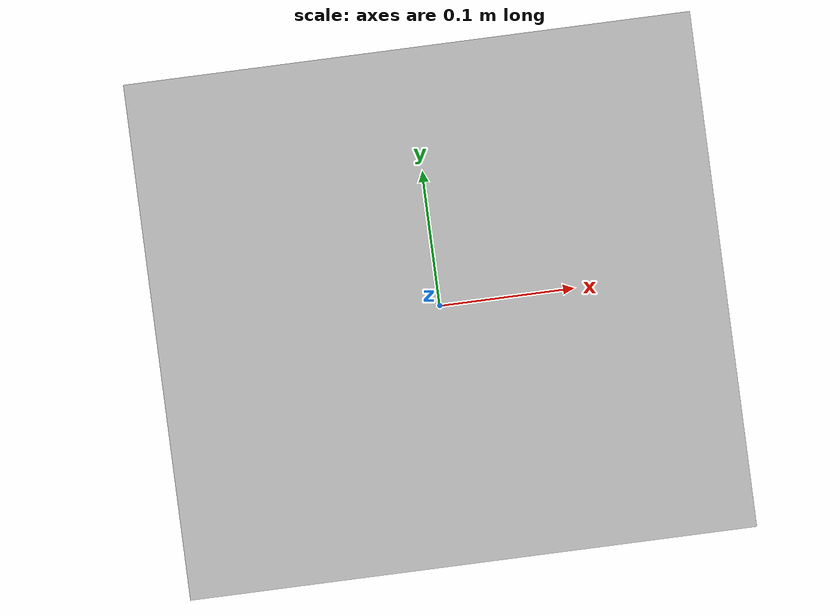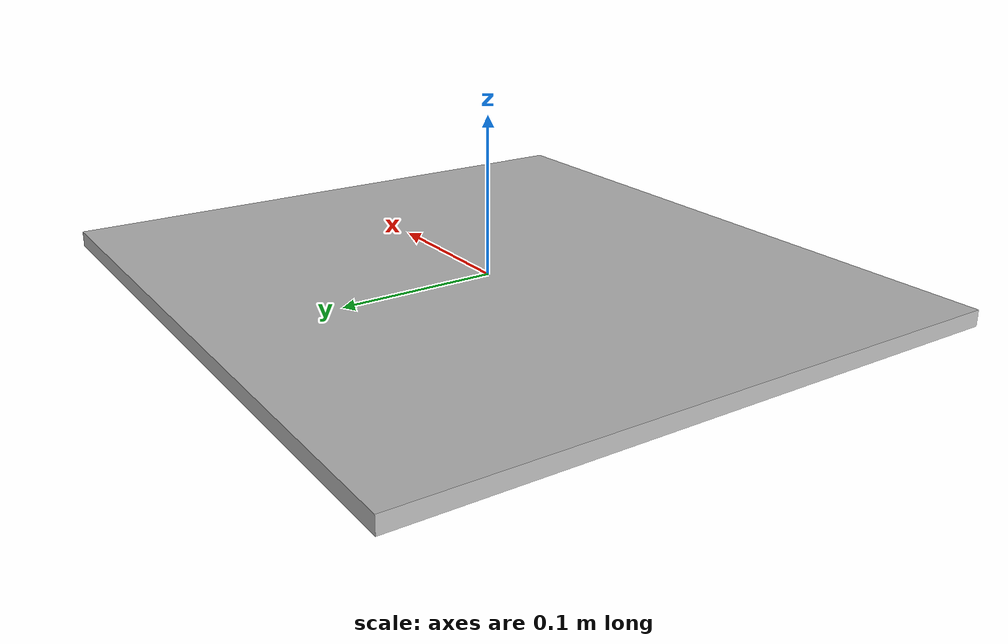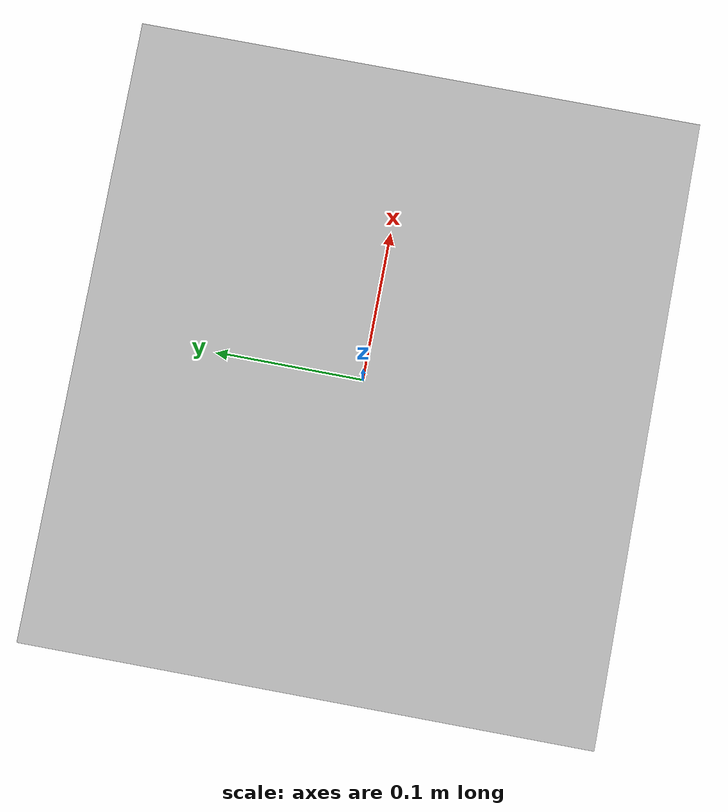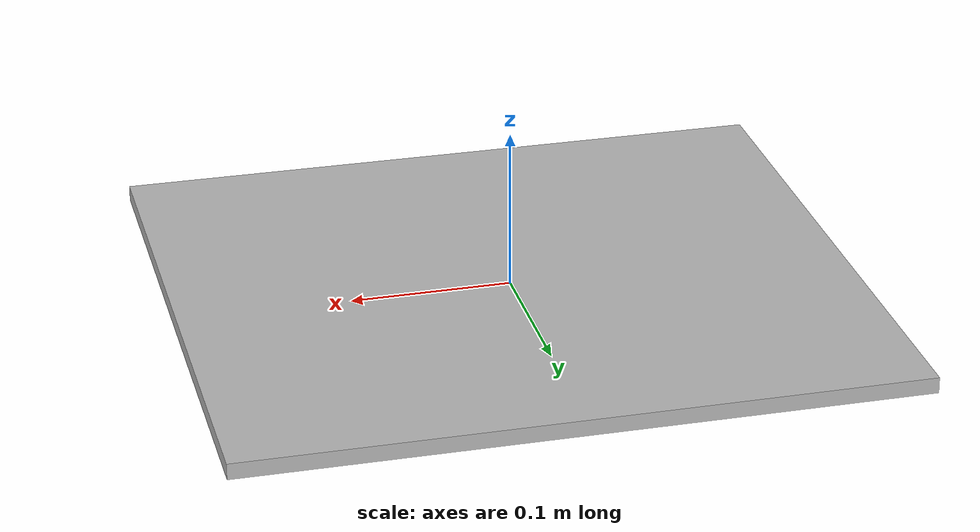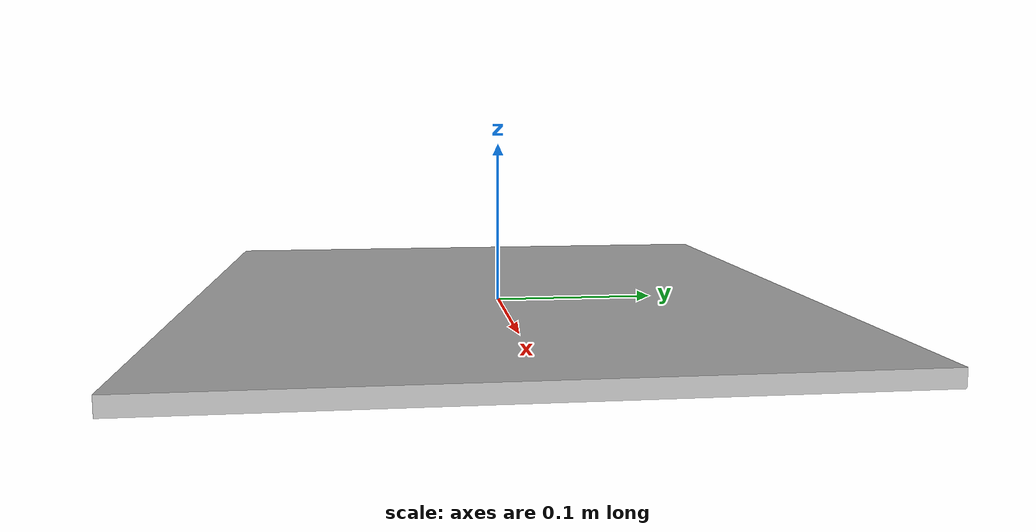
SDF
<?xml version='1.0'?>
<sdf version='1.4'>
    <model name="atags16_0">
        <static>true</static>
        <link name='link'>

	    <inertial>
		<mass>1</mass>
		<inertia>
		  <ixx>1.0</ixx>
		  <ixy>0.0</ixy>
		  <ixz>0.0</ixz>
		  <iyy>1.0</iyy>
		  <iyz>0.0</iyz>
		  <izz>1.0</izz>
		</inertia>
	    </inertial>

            <collision name ='collision'>
                <geometry>
                    <box>
                        <size>0.419 0.381 .010</size>
                    </box>
                </geometry>
		<surface>
		  <friction>
		    <ode>
		      <mu>0.9</mu>
		      <mu2>0.9</mu2>
		      <fdir1>0 0 0</fdir1>
		      <slip1>0.7</slip1>
		      <slip2>0.7</slip2>
		    </ode>
		  </friction>
		</surface>
            </collision>

            <visual name='visual'>
                <geometry>
                    <box>
                        <size>0.419 0.381 .010</size>
                    </box>
                </geometry>

                <material>
                    <script>
                        <uri>model://atags16_0/materials/scripts</uri>
                        <uri>model://atags16_0/materials/textures</uri>
                        <name>atags16_0/Diffuse</name>
                    </script>
                </material>
            </visual>

        </link>
    </model>
</sdf>
